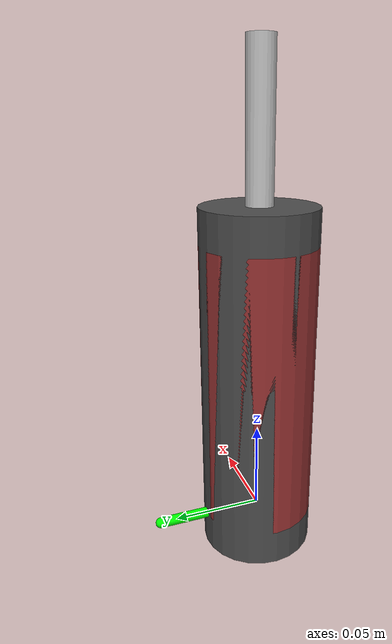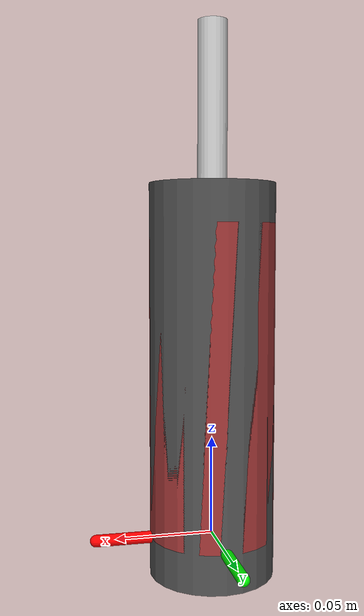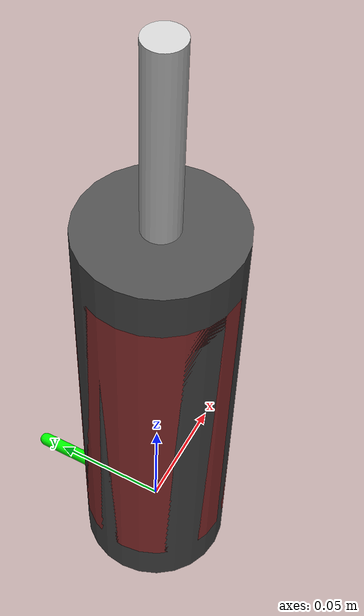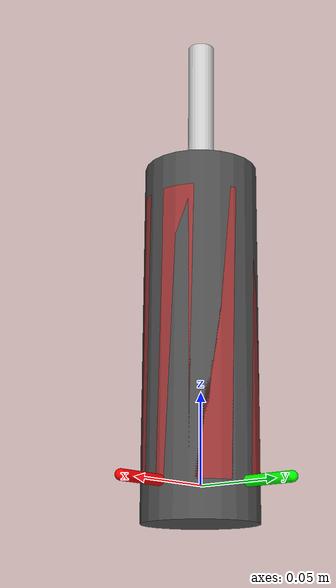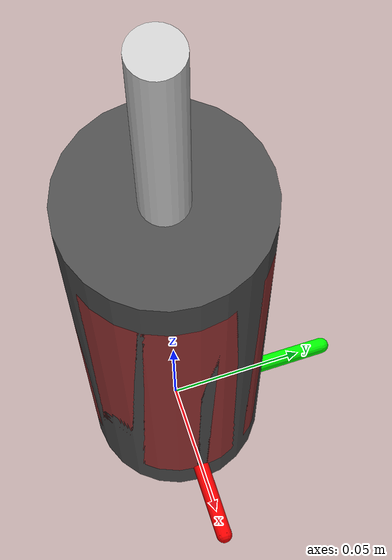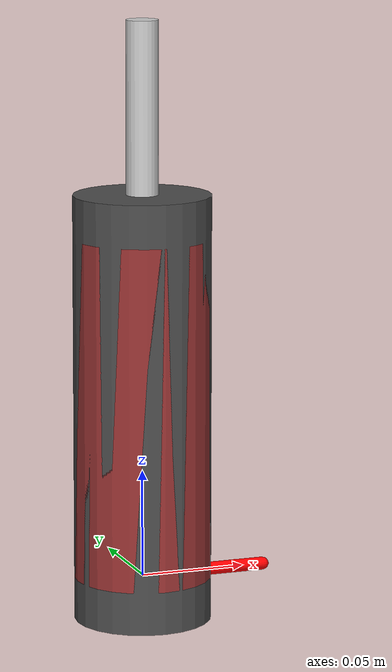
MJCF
<mujoco model="screw_test">
  <compiler angle="radian"/>
  <option gravity="0 0 -9.81" integrator="Euler" timestep="0.002"/>

  <default>
    <default class="eef_collision">
      <geom type="cylinder" contype="1" conaffinity="1" size="0.01 0.05" rgba="0.3 0.3 0.3 1"/>
    </default>
  </default>

  <worldbody>
    <body name="tool_frame" pos="0 0 0" quat="1 0 0 0">
      <site name="tool_site" pos="0 0 0" quat="1 0 0 0"/>
      <geom type="capsule" fromto="0 0 0 0.06 0 0" rgba="1 0 0 1" size="0.003"/>
      <geom type="capsule" fromto="0 0 0 0 0.06 0" rgba="0 1 0 1" size="0.003"/>
      <geom type="capsule" fromto="0 0 0 0 0 0.06" rgba="0 0 1 1" size="0.003"/>

      <body name="screw_top" pos="0 0 0">
        <inertial mass="1.5" pos="0 0 0.08" diaginertia="0.00860 0.00860 0.000768"/>
        <geom type="sphere" size="0.005" pos="0 0 0.08" rgba="1 0 1 1" contype="0" conaffinity="0" group="2"/>
        <geom type="cylinder" size="0.032 0.08" pos="0 0 0.08" contype="0" conaffinity="0" group="2" rgba="0.6 0.2 0.2 1"/>
        <geom type="cylinder" size="0.0075 0.05" pos="0 0 0.21" contype="0" conaffinity="0" group="2" rgba="0.8 0.8 0.8 1"/>
        <geom name="screw_upper_collision" class="eef_collision" size="0.032 0.10" pos="0 0 0.08"/>
        <geom name="screw_lower_collision" class="eef_collision" size="0.0075 0.05" pos="0 0 0.21"/>
      </body>
    </body>
  </worldbody>
</mujoco>
